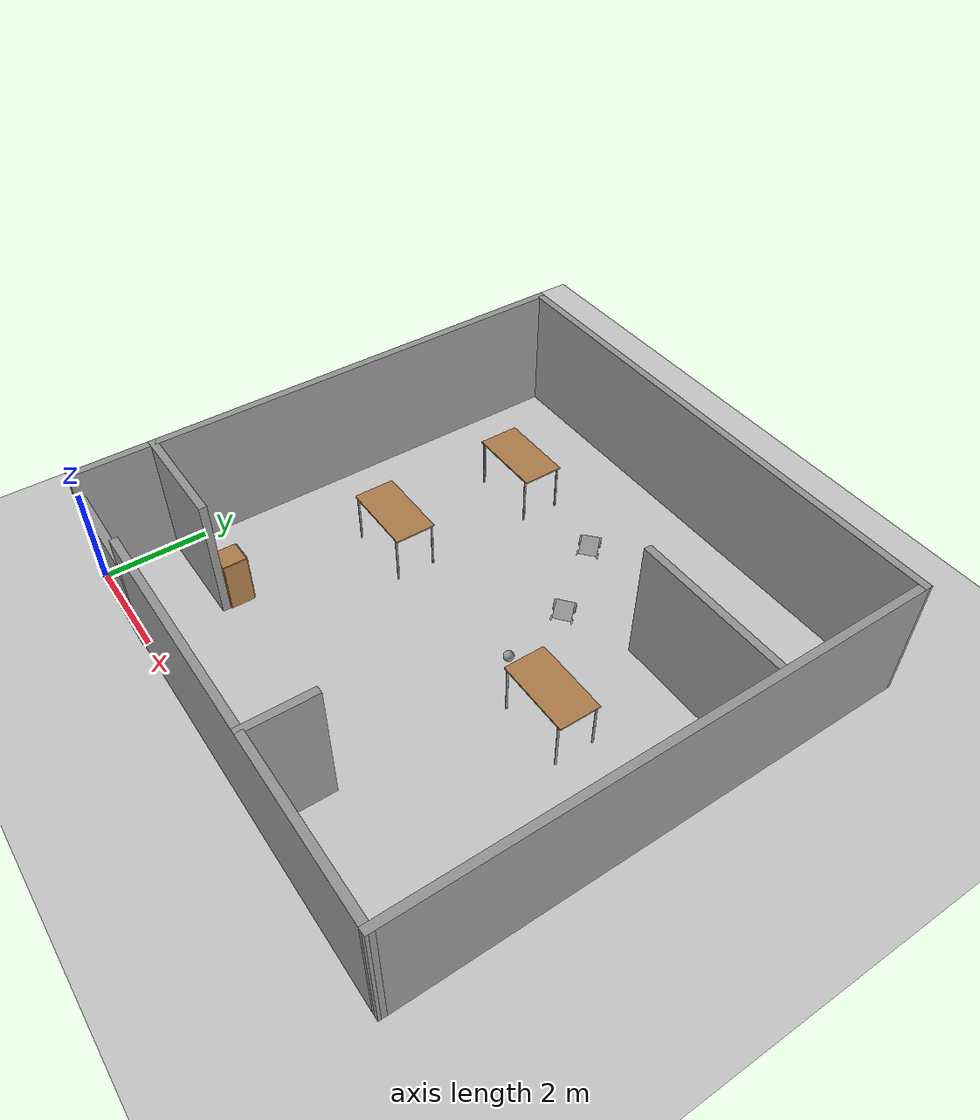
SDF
<sdf version="1.6">
 <world name="default">
  <plugin name="hello" filename="libhello.so"/>
  <light name="sun" type="directional">
   <pose>0 0 10 0 -0 0</pose>
   <diffuse>0.8 0.8 0.8 1</diffuse>
   <specular>0.2 0.2 0.2 1</specular>
   <attenuation>
    <range>1000</range>
    <constant>0.9</constant>
    <linear>0.01</linear>
    <quadratic>0.001</quadratic>
   </attenuation>
   <direction>-0.5 0.1 -0.9</direction>
  </light>
  <model name="ground_plane">
   <static>1</static>
   <link name="link">
    <collision name="collision">
     <geometry><plane><normal>0 0 1</normal><size>100 100</size></plane></geometry>
     <surface>
      <contact><collide_bitmask>65535</collide_bitmask></contact>
      <friction><ode><mu>100</mu><mu2>50</mu2></ode></friction>
     </surface>
    </collision>
    <visual name="visual">
     <cast_shadows>0</cast_shadows>
     <geometry><plane><normal>0 0 1</normal><size>100 100</size></plane></geometry>
     <material>
      <script><uri>file://media/materials/scripts/gazebo.material</uri><name>Gazebo/Grey</name></script>
     </material>
    </visual>
   </link>
  </model>
  <gravity>0 0 -9.8</gravity>
  <magnetic_field>6e-06 2.3e-05 -4.2e-05</magnetic_field>
  <atmosphere type="adiabatic"/>
  <physics name="default_physics" default="0" type="ode">
   <max_step_size>0.001</max_step_size>
   <real_time_factor>1</real_time_factor>
   <real_time_update_rate>1000</real_time_update_rate>
  </physics>
  <scene><ambient>0.4 0.4 0.4 1</ambient><background>0.7 0.7 0.7 1</background><shadows>1</shadows></scene>
  <spherical_coordinates>
   <surface_model>EARTH_WGS84</surface_model>
   <latitude_deg>0</latitude_deg>
   <longitude_deg>0</longitude_deg>
   <elevation>0</elevation>
   <heading_deg>0</heading_deg>
  </spherical_coordinates>
  <model name="building_final">
   <pose>5.00504 5 0 0 -0 0</pose>
   <link name="Door_0">
    <collision name="Door_0_Collision">
     <geometry><box><size>2 0.17 2</size></box></geometry>
     <pose>0 0 1 0 -0 0</pose>
    </collision>
    <visual name="Door_0_Visual">
     <pose>0 0 1 0 -0 0</pose>
     <geometry><box><size>2 0.17 2</size></box></geometry>
     <material>
      <script><uri>file://media/materials/scripts/gazebo.material</uri><name>Gazebo/Grey</name></script>
     </material>
    </visual>
    <pose>-4.00504 -5 0 0 -0 3.12819</pose>
   </link>
   <link name="Wall_0">
    <collision name="Wall_0_Collision">
     <geometry><box><size>10.15 0.15 2.5</size></box></geometry>
     <pose>0 0 1.25 0 -0 0</pose>
    </collision>
    <visual name="Wall_0_Visual">
     <pose>0 0 1.25 0 -0 0</pose>
     <geometry><box><size>10.15 0.15 2.5</size></box></geometry>
     <material>
      <script><uri>file://media/materials/scripts/gazebo.material</uri><name>Gazebo/Grey</name></script>
      <ambient>1 1 1 1</ambient>
     </material>
     <meta><layer>0</layer></meta>
    </visual>
    <pose>-5.00504 0 0 0 -0 1.5708</pose>
   </link>
   <link name="Wall_1">
    <collision name="Wall_1_Collision">
     <geometry><box><size>10.15 0.15 2.5</size></box></geometry>
     <pose>0 0 1.25 0 -0 0</pose>
    </collision>
    <visual name="Wall_1_Visual">
     <pose>0 0 1.25 0 -0 0</pose>
     <geometry><box><size>10.15 0.15 2.5</size></box></geometry>
     <material>
      <script><uri>file://media/materials/scripts/gazebo.material</uri><name>Gazebo/Grey</name></script>
      <ambient>1 1 1 1</ambient>
     </material>
     <meta><layer>0</layer></meta>
    </visual>
    <pose>-0.005037 5 0 0 -0 0</pose>
   </link>
   <link name="Wall_2">
    <collision name="Wall_2_Collision">
     <geometry><box><size>10.15 0.15 2.5</size></box></geometry>
     <pose>0 0 1.25 0 -0 0</pose>
    </collision>
    <visual name="Wall_2_Visual">
     <pose>0 0 1.25 0 -0 0</pose>
     <geometry><box><size>10.15 0.15 2.5</size></box></geometry>
     <material>
      <script><uri>file://media/materials/scripts/gazebo.material</uri><name>Gazebo/Grey</name></script>
      <ambient>1 1 1 1</ambient>
     </material>
     <meta><layer>0</layer></meta>
    </visual>
    <pose>4.99996 0 0 0 0 -1.5698</pose>
   </link>
   <link name="Wall_3">
    <collision name="Wall_3_Collision">
     <geometry><box><size>8.16 0.15 2.5</size></box></geometry>
     <pose>0 0 1.25 0 -0 0</pose>
    </collision>
    <visual name="Wall_3_Visual">
     <pose>0 0 1.25 0 -0 0</pose>
     <geometry><box><size>8.16 0.15 2.5</size></box></geometry>
     <material>
      <script><uri>file://media/materials/scripts/gazebo.material</uri><name>Gazebo/Grey</name></script>
      <ambient>1 1 1 1</ambient>
     </material>
     <meta><layer>0</layer></meta>
    </visual>
    <pose>0.999963 -5 0 0 -0 3.14159</pose>
   </link>
   <static>1</static>
  </model>
  <model name="table">
   <static>1</static>
   <link name="link">
    <collision name="surface">
     <pose>0 0 1 0 -0 0</pose>
     <geometry><box><size>1.5 0.8 0.03</size></box></geometry>
     <surface><friction><ode><mu>0.6</mu><mu2>0.6</mu2></ode></friction></surface>
    </collision>
    <visual name="visual1">
     <pose>0 0 1 0 -0 0</pose>
     <geometry><box><size>1.5 0.8 0.03</size></box></geometry>
     <material>
      <script><uri>file://media/materials/scripts/gazebo.material</uri><name>Gazebo/Wood</name></script>
     </material>
    </visual>
    <collision name="front_left_leg">
     <pose>0.68 0.38 0.5 0 -0 0</pose>
     <geometry><cylinder><radius>0.02</radius><length>1</length></cylinder></geometry>
    </collision>
    <visual name="front_left_leg">
     <pose>0.68 0.38 0.5 0 -0 0</pose>
     <geometry><cylinder><radius>0.02</radius><length>1</length></cylinder></geometry>
     <material>
      <script><uri>file://media/materials/scripts/gazebo.material</uri><name>Gazebo/Grey</name></script>
     </material>
    </visual>
    <collision name="front_right_leg">
     <pose>0.68 -0.38 0.5 0 -0 0</pose>
     <geometry><cylinder><radius>0.02</radius><length>1</length></cylinder></geometry>
    </collision>
    <visual name="front_right_leg">
     <pose>0.68 -0.38 0.5 0 -0 0</pose>
     <geometry><cylinder><radius>0.02</radius><length>1</length></cylinder></geometry>
     <material>
      <script><uri>file://media/materials/scripts/gazebo.material</uri><name>Gazebo/Grey</name></script>
     </material>
    </visual>
    <collision name="back_right_leg">
     <pose>-0.68 -0.38 0.5 0 -0 0</pose>
     <geometry><cylinder><radius>0.02</radius><length>1</length></cylinder></geometry>
    </collision>
    <visual name="back_right_leg">
     <pose>-0.68 -0.38 0.5 0 -0 0</pose>
     <geometry><cylinder><radius>0.02</radius><length>1</length></cylinder></geometry>
     <material>
      <script><uri>file://media/materials/scripts/gazebo.material</uri><name>Gazebo/Grey</name></script>
     </material>
    </visual>
    <collision name="back_left_leg">
     <pose>-0.68 0.38 0.5 0 -0 0</pose>
     <geometry><cylinder><radius>0.02</radius><length>1</length></cylinder></geometry>
    </collision>
    <visual name="back_left_leg">
     <pose>-0.68 0.38 0.5 0 -0 0</pose>
     <geometry><cylinder><radius>0.02</radius><length>1</length></cylinder></geometry>
     <material>
      <script><uri>file://media/materials/scripts/gazebo.material</uri><name>Gazebo/Grey</name></script>
     </material>
    </visual>
   </link>
   <pose>7.4346 4.78943 0 0 -0 0</pose>
  </model>
  <model name="table_clone">
   <static>1</static>
   <link name="link">
    <collision name="surface">
     <pose>0 0 1 0 -0 0</pose>
     <geometry><box><size>1.5 0.8 0.03</size></box></geometry>
     <surface><friction><ode><mu>0.6</mu><mu2>0.6</mu2></ode></friction></surface>
    </collision>
    <visual name="visual1">
     <pose>0 0 1 0 -0 0</pose>
     <geometry><box><size>1.5 0.8 0.03</size></box></geometry>
     <material>
      <script><uri>file://media/materials/scripts/gazebo.material</uri><name>Gazebo/Wood</name></script>
     </material>
    </visual>
    <collision name="front_left_leg">
     <pose>0.68 0.38 0.5 0 -0 0</pose>
     <geometry><cylinder><radius>0.02</radius><length>1</length></cylinder></geometry>
    </collision>
    <visual name="front_left_leg">
     <pose>0.68 0.38 0.5 0 -0 0</pose>
     <geometry><cylinder><radius>0.02</radius><length>1</length></cylinder></geometry>
     <material>
      <script><uri>file://media/materials/scripts/gazebo.material</uri><name>Gazebo/Grey</name></script>
     </material>
    </visual>
    <collision name="front_right_leg">
     <pose>0.68 -0.38 0.5 0 -0 0</pose>
     <geometry><cylinder><radius>0.02</radius><length>1</length></cylinder></geometry>
    </collision>
    <visual name="front_right_leg">
     <pose>0.68 -0.38 0.5 0 -0 0</pose>
     <geometry><cylinder><radius>0.02</radius><length>1</length></cylinder></geometry>
     <material>
      <script><uri>file://media/materials/scripts/gazebo.material</uri><name>Gazebo/Grey</name></script>
     </material>
    </visual>
    <collision name="back_right_leg">
     <pose>-0.68 -0.38 0.5 0 -0 0</pose>
     <geometry><cylinder><radius>0.02</radius><length>1</length></cylinder></geometry>
    </collision>
    <visual name="back_right_leg">
     <pose>-0.68 -0.38 0.5 0 -0 0</pose>
     <geometry><cylinder><radius>0.02</radius><length>1</length></cylinder></geometry>
     <material>
      <script><uri>file://media/materials/scripts/gazebo.material</uri><name>Gazebo/Grey</name></script>
     </material>
    </visual>
    <collision name="back_left_leg">
     <pose>-0.68 0.38 0.5 0 -0 0</pose>
     <geometry><cylinder><radius>0.02</radius><length>1</length></cylinder></geometry>
    </collision>
    <visual name="back_left_leg">
     <pose>-0.68 0.38 0.5 0 -0 0</pose>
     <geometry><cylinder><radius>0.02</radius><length>1</length></cylinder></geometry>
     <material>
      <script><uri>file://media/materials/scripts/gazebo.material</uri><name>Gazebo/Grey</name></script>
     </material>
    </visual>
   </link>
   <pose>2.48389 4.8698 0 0 -0 0</pose>
  </model>
  <model name="table_clone_1">
   <static>1</static>
   <link name="link">
    <collision name="surface">
     <pose>0 0 1 0 -0 0</pose>
     <geometry><box><size>1.5 0.8 0.03</size></box></geometry>
     <surface><friction><ode><mu>0.6</mu><mu2>0.6</mu2></ode></friction></surface>
    </collision>
    <visual name="visual1">
     <pose>0 0 1 0 -0 0</pose>
     <geometry><box><size>1.5 0.8 0.03</size></box></geometry>
     <material>
      <script><uri>file://media/materials/scripts/gazebo.material</uri><name>Gazebo/Wood</name></script>
     </material>
    </visual>
    <collision name="front_left_leg">
     <pose>0.68 0.38 0.5 0 -0 0</pose>
     <geometry><cylinder><radius>0.02</radius><length>1</length></cylinder></geometry>
    </collision>
    <visual name="front_left_leg">
     <pose>0.68 0.38 0.5 0 -0 0</pose>
     <geometry><cylinder><radius>0.02</radius><length>1</length></cylinder></geometry>
     <material>
      <script><uri>file://media/materials/scripts/gazebo.material</uri><name>Gazebo/Grey</name></script>
     </material>
    </visual>
    <collision name="front_right_leg">
     <pose>0.68 -0.38 0.5 0 -0 0</pose>
     <geometry><cylinder><radius>0.02</radius><length>1</length></cylinder></geometry>
    </collision>
    <visual name="front_right_leg">
     <pose>0.68 -0.38 0.5 0 -0 0</pose>
     <geometry><cylinder><radius>0.02</radius><length>1</length></cylinder></geometry>
     <material>
      <script><uri>file://media/materials/scripts/gazebo.material</uri><name>Gazebo/Grey</name></script>
     </material>
    </visual>
    <collision name="back_right_leg">
     <pose>-0.68 -0.38 0.5 0 -0 0</pose>
     <geometry><cylinder><radius>0.02</radius><length>1</length></cylinder></geometry>
    </collision>
    <visual name="back_right_leg">
     <pose>-0.68 -0.38 0.5 0 -0 0</pose>
     <geometry><cylinder><radius>0.02</radius><length>1</length></cylinder></geometry>
     <material>
      <script><uri>file://media/materials/scripts/gazebo.material</uri><name>Gazebo/Grey</name></script>
     </material>
    </visual>
    <collision name="back_left_leg">
     <pose>-0.68 0.38 0.5 0 -0 0</pose>
     <geometry><cylinder><radius>0.02</radius><length>1</length></cylinder></geometry>
    </collision>
    <visual name="back_left_leg">
     <pose>-0.68 0.38 0.5 0 -0 0</pose>
     <geometry><cylinder><radius>0.02</radius><length>1</length></cylinder></geometry>
     <material>
      <script><uri>file://media/materials/scripts/gazebo.material</uri><name>Gazebo/Grey</name></script>
     </material>
    </visual>
   </link>
   <pose>2.49519 7.74494 0 0 -0 0</pose>
  </model>
  <model name="robotrevision">
   <link name="link_0">
    <pose>-0.15 -0.190014 -0.02401 1.5707 -0 0</pose>
    <inertial>
     <mass>1</mass>
     <inertia><ixx>0.145833</ixx><ixy>0</ixy><ixz>0</ixz><iyy>0.145833</iyy><iyz>0</iyz><izz>0.125</izz></inertia>
    </inertial>
    <visual name="visual">
     <geometry><cylinder><radius>0.1</radius><length>0.03</length></cylinder></geometry>
     <material>
      <lighting>1</lighting>
      <script><uri>file://media/materials/scripts/gazebo.material</uri><name>Gazebo/Grey</name></script>
      <shader type="pixel"><normal_map>__default__</normal_map></shader>
      <ambient>0.3 0.3 0.3 1</ambient>
      <diffuse>0.7 0.7 0.7 1</diffuse>
      <specular>0.01 0.01 0.01 1</specular>
      <emissive>0 0 0 1</emissive>
     </material>
    </visual>
    <collision name="collision">
     <geometry><cylinder><radius>0.1</radius><length>0.03</length></cylinder></geometry>
     <surface>
      <friction>
       <ode><mu>1</mu><mu2>1</mu2><fdir1>0 0 0</fdir1><slip1>0</slip1><slip2>0</slip2></ode>
       <torsional>
        <coefficient>1</coefficient>
        <patch_radius>0</patch_radius>
        <surface_radius>0</surface_radius>
        <use_patch_radius>1</use_patch_radius>
        <ode><slip>0</slip></ode>
       </torsional>
      </friction>
      <bounce><restitution_coefficient>0</restitution_coefficient><threshold>1e+06</threshold></bounce>
      <contact>
       <collide_without_contact>0</collide_without_contact>
       <collide_without_contact_bitmask>1</collide_without_contact_bitmask>
       <collide_bitmask>1</collide_bitmask>
       <ode>
        <soft_cfm>0</soft_cfm>
        <soft_erp>0.2</soft_erp>
        <kp>1e+13</kp>
        <kd>1</kd>
        <max_vel>0.01</max_vel>
        <min_depth>0</min_depth>
       </ode>
       <bullet>
        <split_impulse>1</split_impulse>
        <split_impulse_penetration_threshold>-0.01</split_impulse_penetration_threshold>
        <soft_cfm>0</soft_cfm>
        <soft_erp>0.2</soft_erp>
        <kp>1e+13</kp>
        <kd>1</kd>
       </bullet>
      </contact>
     </surface>
    </collision>
   </link>
   <link name="link_0_clone">
    <pose>0.15 -0.19001 0.016002 1.5707 -0 0</pose>
    <inertial>
     <mass>1</mass>
     <inertia><ixx>0.145833</ixx><ixy>0</ixy><ixz>0</ixz><iyy>0.145833</iyy><iyz>0</iyz><izz>0.125</izz></inertia>
    </inertial>
    <visual name="visual">
     <geometry><cylinder><radius>0.1</radius><length>0.03</length></cylinder></geometry>
     <material>
      <lighting>1</lighting>
      <script><uri>file://media/materials/scripts/gazebo.material</uri><name>Gazebo/Grey</name></script>
      <shader type="pixel"><normal_map>__default__</normal_map></shader>
      <ambient>0.3 0.3 0.3 1</ambient>
      <diffuse>0.7 0.7 0.7 1</diffuse>
      <specular>0.01 0.01 0.01 1</specular>
      <emissive>0 0 0 1</emissive>
     </material>
    </visual>
    <collision name="collision">
     <geometry><cylinder><radius>0.1</radius><length>0.03</length></cylinder></geometry>
     <surface>
      <friction>
       <ode><mu>1</mu><mu2>1</mu2><fdir1>0 0 0</fdir1><slip1>0</slip1><slip2>0</slip2></ode>
       <torsional>
        <coefficient>1</coefficient>
        <patch_radius>0</patch_radius>
        <surface_radius>0</surface_radius>
        <use_patch_radius>1</use_patch_radius>
        <ode><slip>0</slip></ode>
       </torsional>
      </friction>
      <bounce><restitution_coefficient>0</restitution_coefficient><threshold>1e+06</threshold></bounce>
      <contact>
       <collide_without_contact>0</collide_without_contact>
       <collide_without_contact_bitmask>1</collide_without_contact_bitmask>
       <collide_bitmask>1</collide_bitmask>
       <ode>
        <soft_cfm>0</soft_cfm>
        <soft_erp>0.2</soft_erp>
        <kp>1e+13</kp>
        <kd>1</kd>
        <max_vel>0.01</max_vel>
        <min_depth>0</min_depth>
       </ode>
       <bullet>
        <split_impulse>1</split_impulse>
        <split_impulse_penetration_threshold>-0.01</split_impulse_penetration_threshold>
        <soft_cfm>0</soft_cfm>
        <soft_erp>0.2</soft_erp>
        <kp>1e+13</kp>
        <kd>1</kd>
       </bullet>
      </contact>
     </surface>
    </collision>
   </link>
   <link name="link_0_clone_0">
    <pose>0.15 0.19001 0.016002 1.5707 -0 0</pose>
    <inertial>
     <mass>1</mass>
     <inertia><ixx>0.145833</ixx><ixy>0</ixy><ixz>0</ixz><iyy>0.145833</iyy><iyz>0</iyz><izz>0.125</izz></inertia>
    </inertial>
    <visual name="visual">
     <geometry><cylinder><radius>0.1</radius><length>0.03</length></cylinder></geometry>
     <material>
      <lighting>1</lighting>
      <script><uri>file://media/materials/scripts/gazebo.material</uri><name>Gazebo/Grey</name></script>
      <shader type="pixel"><normal_map>__default__</normal_map></shader>
      <ambient>0.3 0.3 0.3 1</ambient>
      <diffuse>0.7 0.7 0.7 1</diffuse>
      <specular>0.01 0.01 0.01 1</specular>
      <emissive>0 0 0 1</emissive>
     </material>
    </visual>
    <collision name="collision">
     <geometry><cylinder><radius>0.1</radius><length>0.03</length></cylinder></geometry>
     <surface>
      <friction>
       <ode><mu>1</mu><mu2>1</mu2><fdir1>0 0 0</fdir1><slip1>0</slip1><slip2>0</slip2></ode>
       <torsional>
        <coefficient>1</coefficient>
        <patch_radius>0</patch_radius>
        <surface_radius>0</surface_radius>
        <use_patch_radius>1</use_patch_radius>
        <ode><slip>0</slip></ode>
       </torsional>
      </friction>
      <bounce><restitution_coefficient>0</restitution_coefficient><threshold>1e+06</threshold></bounce>
      <contact>
       <collide_without_contact>0</collide_without_contact>
       <collide_without_contact_bitmask>1</collide_without_contact_bitmask>
       <collide_bitmask>1</collide_bitmask>
       <ode>
        <soft_cfm>0</soft_cfm>
        <soft_erp>0.2</soft_erp>
        <kp>1e+13</kp>
        <kd>1</kd>
        <max_vel>0.01</max_vel>
        <min_depth>0</min_depth>
       </ode>
       <bullet>
        <split_impulse>1</split_impulse>
        <split_impulse_penetration_threshold>-0.01</split_impulse_penetration_threshold>
        <soft_cfm>0</soft_cfm>
        <soft_erp>0.2</soft_erp>
        <kp>1e+13</kp>
        <kd>1</kd>
       </bullet>
      </contact>
     </surface>
    </collision>
   </link>
   <link name="link_0_clone_1">
    <pose>-0.15 0.19001 0.016002 1.5707 -0 0</pose>
    <inertial>
     <mass>1</mass>
     <inertia><ixx>0.145833</ixx><ixy>0</ixy><ixz>0</ixz><iyy>0.145833</iyy><iyz>0</iyz><izz>0.125</izz></inertia>
    </inertial>
    <visual name="visual">
     <geometry><cylinder><radius>0.1</radius><length>0.03</length></cylinder></geometry>
     <material>
      <lighting>1</lighting>
      <script><uri>file://media/materials/scripts/gazebo.material</uri><name>Gazebo/Grey</name></script>
      <shader type="pixel"><normal_map>__default__</normal_map></shader>
      <ambient>0.3 0.3 0.3 1</ambient>
      <diffuse>0.7 0.7 0.7 1</diffuse>
      <specular>0.01 0.01 0.01 1</specular>
      <emissive>0 0 0 1</emissive>
     </material>
    </visual>
    <collision name="collision">
     <geometry><cylinder><radius>0.1</radius><length>0.03</length></cylinder></geometry>
     <surface>
      <friction>
       <ode><mu>1</mu><mu2>1</mu2><fdir1>0 0 0</fdir1><slip1>0</slip1><slip2>0</slip2></ode>
       <torsional>
        <coefficient>1</coefficient>
        <patch_radius>0</patch_radius>
        <surface_radius>0</surface_radius>
        <use_patch_radius>1</use_patch_radius>
        <ode><slip>0</slip></ode>
       </torsional>
      </friction>
      <bounce><restitution_coefficient>0</restitution_coefficient><threshold>1e+06</threshold></bounce>
      <contact>
       <collide_without_contact>0</collide_without_contact>
       <collide_without_contact_bitmask>1</collide_without_contact_bitmask>
       <collide_bitmask>1</collide_bitmask>
       <ode>
        <soft_cfm>0</soft_cfm>
        <soft_erp>0.2</soft_erp>
        <kp>1e+13</kp>
        <kd>1</kd>
        <max_vel>0.01</max_vel>
        <min_depth>0</min_depth>
       </ode>
       <bullet>
        <split_impulse>1</split_impulse>
        <split_impulse_penetration_threshold>-0.01</split_impulse_penetration_threshold>
        <soft_cfm>0</soft_cfm>
        <soft_erp>0.2</soft_erp>
        <kp>1e+13</kp>
        <kd>1</kd>
       </bullet>
      </contact>
     </surface>
    </collision>
   </link>
   <link name="link_1">
    <pose>0 -0 -0.023997 0 -0 0</pose>
    <inertial>
     <mass>1</mass>
     <inertia>
      <ixx>0.166667</ixx>
      <ixy>0</ixy>
      <ixz>0</ixz>
      <iyy>0.166667</iyy>
      <iyz>0</iyz>
      <izz>0.166667</izz>
     </inertia>
    </inertial>
    <visual name="visual">
     <geometry><box><size>0.5 0.35 0.05</size></box></geometry>
     <material>
      <lighting>1</lighting>
      <script><uri>file://media/materials/scripts/gazebo.material</uri><name>Gazebo/Grey</name></script>
      <shader type="pixel"><normal_map>__default__</normal_map></shader>
      <ambient>0.3 0.3 0.3 1</ambient>
      <diffuse>0.7 0.7 0.7 1</diffuse>
      <specular>0.01 0.01 0.01 1</specular>
      <emissive>0 0 0 1</emissive>
     </material>
    </visual>
    <collision name="collision">
     <geometry><box><size>0.5 0.35 0.05</size></box></geometry>
     <surface>
      <friction>
       <ode><mu>1</mu><mu2>1</mu2><fdir1>0 0 0</fdir1><slip1>0</slip1><slip2>0</slip2></ode>
       <torsional>
        <coefficient>1</coefficient>
        <patch_radius>0</patch_radius>
        <surface_radius>0</surface_radius>
        <use_patch_radius>1</use_patch_radius>
        <ode><slip>0</slip></ode>
       </torsional>
      </friction>
      <bounce><restitution_coefficient>0</restitution_coefficient><threshold>1e+06</threshold></bounce>
      <contact>
       <collide_without_contact>0</collide_without_contact>
       <collide_without_contact_bitmask>1</collide_without_contact_bitmask>
       <collide_bitmask>1</collide_bitmask>
       <ode>
        <soft_cfm>0</soft_cfm>
        <soft_erp>0.2</soft_erp>
        <kp>1e+13</kp>
        <kd>1</kd>
        <max_vel>0.01</max_vel>
        <min_depth>0</min_depth>
       </ode>
       <bullet>
        <split_impulse>1</split_impulse>
        <split_impulse_penetration_threshold>-0.01</split_impulse_penetration_threshold>
        <soft_cfm>0</soft_cfm>
        <soft_erp>0.2</soft_erp>
        <kp>1e+13</kp>
        <kd>1</kd>
       </bullet>
      </contact>
     </surface>
    </collision>
   </link>
   <joint name="link_1_JOINT_4" type="revolute">
    <parent>link_1</parent>
    <child>link_0_clone_0</child>
    <axis>
     <xyz>0 0 1</xyz>
     <use_parent_model_frame>0</use_parent_model_frame>
     <limit>
      <lower>-1.79769e+308</lower>
      <upper>1.79769e+308</upper>
      <effort>-1</effort>
      <velocity>-1</velocity>
     </limit>
     <dynamics>
      <spring_reference>0</spring_reference>
      <spring_stiffness>0</spring_stiffness>
      <damping>0</damping>
     </dynamics>
    </axis>
    <physics>
     <ode><limit><cfm>0</cfm><erp>0.2</erp></limit><suspension><cfm>0</cfm><erp>0.2</erp></suspension></ode>
    </physics>
   </joint>
   <joint name="link_1_JOINT_5" type="revolute">
    <parent>link_1</parent>
    <child>link_0</child>
    <axis>
     <xyz>0 0 1</xyz>
     <use_parent_model_frame>0</use_parent_model_frame>
     <limit>
      <lower>-1.79769e+308</lower>
      <upper>1.79769e+308</upper>
      <effort>-1</effort>
      <velocity>-1</velocity>
     </limit>
     <dynamics>
      <spring_reference>0</spring_reference>
      <spring_stiffness>0</spring_stiffness>
      <damping>0</damping>
     </dynamics>
    </axis>
    <physics>
     <ode><limit><cfm>0</cfm><erp>0.2</erp></limit><suspension><cfm>0</cfm><erp>0.2</erp></suspension></ode>
    </physics>
   </joint>
   <joint name="link_1_JOINT_6" type="revolute">
    <parent>link_1</parent>
    <child>link_0_clone</child>
    <axis>
     <xyz>0 0 1</xyz>
     <use_parent_model_frame>0</use_parent_model_frame>
     <limit>
      <lower>-1.79769e+308</lower>
      <upper>1.79769e+308</upper>
      <effort>-1</effort>
      <velocity>-1</velocity>
     </limit>
     <dynamics>
      <spring_reference>0</spring_reference>
      <spring_stiffness>0</spring_stiffness>
      <damping>0</damping>
     </dynamics>
    </axis>
    <physics>
     <ode><limit><cfm>0</cfm><erp>0.2</erp></limit><suspension><cfm>0</cfm><erp>0.2</erp></suspension></ode>
    </physics>
   </joint>
   <joint name="link_1_JOINT_7" type="revolute">
    <parent>link_1</parent>
    <child>link_0_clone_1</child>
    <axis>
     <xyz>0 0 1</xyz>
     <use_parent_model_frame>0</use_parent_model_frame>
     <limit>
      <lower>-1.79769e+308</lower>
      <upper>1.79769e+308</upper>
      <effort>-1</effort>
      <velocity>-1</velocity>
     </limit>
     <dynamics>
      <spring_reference>0</spring_reference>
      <spring_stiffness>0</spring_stiffness>
      <damping>0</damping>
     </dynamics>
    </axis>
    <physics>
     <ode><limit><cfm>0</cfm><erp>0.2</erp></limit><suspension><cfm>0</cfm><erp>0.2</erp></suspension></ode>
    </physics>
   </joint>
   <static>0</static>
   <pose>5.6112 6.48088 0.002225 -3.14136 0.540202 -0.881859</pose>
  </model>
  <model name="robotrevision_0">
   <link name="link_0">
    <pose>-0.15 -0.190014 -0.02401 1.5707 -0 0</pose>
    <inertial>
     <mass>1</mass>
     <inertia><ixx>0.145833</ixx><ixy>0</ixy><ixz>0</ixz><iyy>0.145833</iyy><iyz>0</iyz><izz>0.125</izz></inertia>
    </inertial>
    <visual name="visual">
     <geometry><cylinder><radius>0.1</radius><length>0.03</length></cylinder></geometry>
     <material>
      <lighting>1</lighting>
      <script><uri>file://media/materials/scripts/gazebo.material</uri><name>Gazebo/Grey</name></script>
      <shader type="pixel"><normal_map>__default__</normal_map></shader>
      <ambient>0.3 0.3 0.3 1</ambient>
      <diffuse>0.7 0.7 0.7 1</diffuse>
      <specular>0.01 0.01 0.01 1</specular>
      <emissive>0 0 0 1</emissive>
     </material>
    </visual>
    <collision name="collision">
     <geometry><cylinder><radius>0.1</radius><length>0.03</length></cylinder></geometry>
     <surface>
      <friction>
       <ode><mu>1</mu><mu2>1</mu2><fdir1>0 0 0</fdir1><slip1>0</slip1><slip2>0</slip2></ode>
       <torsional>
        <coefficient>1</coefficient>
        <patch_radius>0</patch_radius>
        <surface_radius>0</surface_radius>
        <use_patch_radius>1</use_patch_radius>
        <ode><slip>0</slip></ode>
       </torsional>
      </friction>
      <bounce><restitution_coefficient>0</restitution_coefficient><threshold>1e+06</threshold></bounce>
      <contact>
       <collide_without_contact>0</collide_without_contact>
       <collide_without_contact_bitmask>1</collide_without_contact_bitmask>
       <collide_bitmask>1</collide_bitmask>
       <ode>
        <soft_cfm>0</soft_cfm>
        <soft_erp>0.2</soft_erp>
        <kp>1e+13</kp>
        <kd>1</kd>
        <max_vel>0.01</max_vel>
        <min_depth>0</min_depth>
       </ode>
       <bullet>
        <split_impulse>1</split_impulse>
        <split_impulse_penetration_threshold>-0.01</split_impulse_penetration_threshold>
        <soft_cfm>0</soft_cfm>
        <soft_erp>0.2</soft_erp>
        <kp>1e+13</kp>
        <kd>1</kd>
       </bullet>
      </contact>
     </surface>
    </collision>
   </link>
   <link name="link_0_clone">
    <pose>0.15 -0.19001 0.016002 1.5707 -0 0</pose>
    <inertial>
     <mass>1</mass>
     <inertia><ixx>0.145833</ixx><ixy>0</ixy><ixz>0</ixz><iyy>0.145833</iyy><iyz>0</iyz><izz>0.125</izz></inertia>
    </inertial>
    <visual name="visual">
     <geometry><cylinder><radius>0.1</radius><length>0.03</length></cylinder></geometry>
     <material>
      <lighting>1</lighting>
      <script><uri>file://media/materials/scripts/gazebo.material</uri><name>Gazebo/Grey</name></script>
      <shader type="pixel"><normal_map>__default__</normal_map></shader>
      <ambient>0.3 0.3 0.3 1</ambient>
      <diffuse>0.7 0.7 0.7 1</diffuse>
      <specular>0.01 0.01 0.01 1</specular>
      <emissive>0 0 0 1</emissive>
     </material>
    </visual>
    <collision name="collision">
     <geometry><cylinder><radius>0.1</radius><length>0.03</length></cylinder></geometry>
     <surface>
      <friction>
       <ode><mu>1</mu><mu2>1</mu2><fdir1>0 0 0</fdir1><slip1>0</slip1><slip2>0</slip2></ode>
       <torsional>
        <coefficient>1</coefficient>
        <patch_radius>0</patch_radius>
        <surface_radius>0</surface_radius>
        <use_patch_radius>1</use_patch_radius>
        <ode><slip>0</slip></ode>
       </torsional>
      </friction>
      <bounce><restitution_coefficient>0</restitution_coefficient><threshold>1e+06</threshold></bounce>
      <contact>
       <collide_without_contact>0</collide_without_contact>
       <collide_without_contact_bitmask>1</collide_without_contact_bitmask>
       <collide_bitmask>1</collide_bitmask>
       <ode>
        <soft_cfm>0</soft_cfm>
        <soft_erp>0.2</soft_erp>
        <kp>1e+13</kp>
        <kd>1</kd>
        <max_vel>0.01</max_vel>
        <min_depth>0</min_depth>
       </ode>
       <bullet>
        <split_impulse>1</split_impulse>
        <split_impulse_penetration_threshold>-0.01</split_impulse_penetration_threshold>
        <soft_cfm>0</soft_cfm>
        <soft_erp>0.2</soft_erp>
        <kp>1e+13</kp>
        <kd>1</kd>
       </bullet>
      </contact>
     </surface>
    </collision>
   </link>
   <link name="link_0_clone_0">
    <pose>0.15 0.19001 0.016002 1.5707 -0 0</pose>
    <inertial>
     <mass>1</mass>
     <inertia><ixx>0.145833</ixx><ixy>0</ixy><ixz>0</ixz><iyy>0.145833</iyy><iyz>0</iyz><izz>0.125</izz></inertia>
    </inertial>
    <visual name="visual">
     <geometry><cylinder><radius>0.1</radius><length>0.03</length></cylinder></geometry>
     <material>
      <lighting>1</lighting>
      <script><uri>file://media/materials/scripts/gazebo.material</uri><name>Gazebo/Grey</name></script>
      <shader type="pixel"><normal_map>__default__</normal_map></shader>
      <ambient>0.3 0.3 0.3 1</ambient>
      <diffuse>0.7 0.7 0.7 1</diffuse>
      <specular>0.01 0.01 0.01 1</specular>
      <emissive>0 0 0 1</emissive>
     </material>
    </visual>
    <collision name="collision">
     <geometry><cylinder><radius>0.1</radius><length>0.03</length></cylinder></geometry>
     <surface>
      <friction>
       <ode><mu>1</mu><mu2>1</mu2><fdir1>0 0 0</fdir1><slip1>0</slip1><slip2>0</slip2></ode>
       <torsional>
        <coefficient>1</coefficient>
        <patch_radius>0</patch_radius>
        <surface_radius>0</surface_radius>
        <use_patch_radius>1</use_patch_radius>
        <ode><slip>0</slip></ode>
       </torsional>
      </friction>
      <bounce><restitution_coefficient>0</restitution_coefficient><threshold>1e+06</threshold></bounce>
      <contact>
       <collide_without_contact>0</collide_without_contact>
       <collide_without_contact_bitmask>1</collide_without_contact_bitmask>
       <collide_bitmask>1</collide_bitmask>
       <ode>
        <soft_cfm>0</soft_cfm>
        <soft_erp>0.2</soft_erp>
        <kp>1e+13</kp>
        <kd>1</kd>
        <max_vel>0.01</max_vel>
        <min_depth>0</min_depth>
       </ode>
       <bullet>
        <split_impulse>1</split_impulse>
        <split_impulse_penetration_threshold>-0.01</split_impulse_penetration_threshold>
        <soft_cfm>0</soft_cfm>
        <soft_erp>0.2</soft_erp>
        <kp>1e+13</kp>
        <kd>1</kd>
       </bullet>
      </contact>
     </surface>
    </collision>
   </link>
   <link name="link_0_clone_1">
    <pose>-0.15 0.19001 0.016002 1.5707 -0 0</pose>
    <inertial>
     <mass>1</mass>
     <inertia><ixx>0.145833</ixx><ixy>0</ixy><ixz>0</ixz><iyy>0.145833</iyy><iyz>0</iyz><izz>0.125</izz></inertia>
    </inertial>
    <visual name="visual">
     <geometry><cylinder><radius>0.1</radius><length>0.03</length></cylinder></geometry>
     <material>
      <lighting>1</lighting>
      <script><uri>file://media/materials/scripts/gazebo.material</uri><name>Gazebo/Grey</name></script>
      <shader type="pixel"><normal_map>__default__</normal_map></shader>
      <ambient>0.3 0.3 0.3 1</ambient>
      <diffuse>0.7 0.7 0.7 1</diffuse>
      <specular>0.01 0.01 0.01 1</specular>
      <emissive>0 0 0 1</emissive>
     </material>
    </visual>
    <collision name="collision">
     <geometry><cylinder><radius>0.1</radius><length>0.03</length></cylinder></geometry>
     <surface>
      <friction>
       <ode><mu>1</mu><mu2>1</mu2><fdir1>0 0 0</fdir1><slip1>0</slip1><slip2>0</slip2></ode>
       <torsional>
        <coefficient>1</coefficient>
        <patch_radius>0</patch_radius>
        <surface_radius>0</surface_radius>
        <use_patch_radius>1</use_patch_radius>
        <ode><slip>0</slip></ode>
       </torsional>
      </friction>
      <bounce><restitution_coefficient>0</restitution_coefficient><threshold>1e+06</threshold></bounce>
      <contact>
       <collide_without_contact>0</collide_without_contact>
       <collide_without_contact_bitmask>1</collide_without_contact_bitmask>
       <collide_bitmask>1</collide_bitmask>
       <ode>
        <soft_cfm>0</soft_cfm>
        <soft_erp>0.2</soft_erp>
        <kp>1e+13</kp>
        <kd>1</kd>
        <max_vel>0.01</max_vel>
        <min_depth>0</min_depth>
       </ode>
       <bullet>
        <split_impulse>1</split_impulse>
        <split_impulse_penetration_threshold>-0.01</split_impulse_penetration_threshold>
        <soft_cfm>0</soft_cfm>
        <soft_erp>0.2</soft_erp>
        <kp>1e+13</kp>
        <kd>1</kd>
       </bullet>
      </contact>
     </surface>
    </collision>
   </link>
   <link name="link_1">
    <pose>0 -0 -0.023997 0 -0 0</pose>
    <inertial>
     <mass>1</mass>
     <inertia>
      <ixx>0.166667</ixx>
      <ixy>0</ixy>
      <ixz>0</ixz>
      <iyy>0.166667</iyy>
      <iyz>0</iyz>
      <izz>0.166667</izz>
     </inertia>
    </inertial>
    <visual name="visual">
     <geometry><box><size>0.5 0.35 0.05</size></box></geometry>
     <material>
      <lighting>1</lighting>
      <script><uri>file://media/materials/scripts/gazebo.material</uri><name>Gazebo/Grey</name></script>
      <shader type="pixel"><normal_map>__default__</normal_map></shader>
      <ambient>0.3 0.3 0.3 1</ambient>
      <diffuse>0.7 0.7 0.7 1</diffuse>
      <specular>0.01 0.01 0.01 1</specular>
      <emissive>0 0 0 1</emissive>
     </material>
    </visual>
    <collision name="collision">
     <geometry><box><size>0.5 0.35 0.05</size></box></geometry>
     <surface>
      <friction>
       <ode><mu>1</mu><mu2>1</mu2><fdir1>0 0 0</fdir1><slip1>0</slip1><slip2>0</slip2></ode>
       <torsional>
        <coefficient>1</coefficient>
        <patch_radius>0</patch_radius>
        <surface_radius>0</surface_radius>
        <use_patch_radius>1</use_patch_radius>
        <ode><slip>0</slip></ode>
       </torsional>
      </friction>
      <bounce><restitution_coefficient>0</restitution_coefficient><threshold>1e+06</threshold></bounce>
      <contact>
       <collide_without_contact>0</collide_without_contact>
       <collide_without_contact_bitmask>1</collide_without_contact_bitmask>
       <collide_bitmask>1</collide_bitmask>
       <ode>
        <soft_cfm>0</soft_cfm>
        <soft_erp>0.2</soft_erp>
        <kp>1e+13</kp>
        <kd>1</kd>
        <max_vel>0.01</max_vel>
        <min_depth>0</min_depth>
       </ode>
       <bullet>
        <split_impulse>1</split_impulse>
        <split_impulse_penetration_threshold>-0.01</split_impulse_penetration_threshold>
        <soft_cfm>0</soft_cfm>
        <soft_erp>0.2</soft_erp>
        <kp>1e+13</kp>
        <kd>1</kd>
       </bullet>
      </contact>
     </surface>
    </collision>
   </link>
   <joint name="link_1_JOINT_4" type="revolute">
    <parent>link_1</parent>
    <child>link_0_clone_0</child>
    <axis>
     <xyz>0 0 1</xyz>
     <use_parent_model_frame>0</use_parent_model_frame>
     <limit>
      <lower>-1.79769e+308</lower>
      <upper>1.79769e+308</upper>
      <effort>-1</effort>
      <velocity>-1</velocity>
     </limit>
     <dynamics>
      <spring_reference>0</spring_reference>
      <spring_stiffness>0</spring_stiffness>
      <damping>0</damping>
     </dynamics>
    </axis>
    <physics>
     <ode><limit><cfm>0</cfm><erp>0.2</erp></limit><suspension><cfm>0</cfm><erp>0.2</erp></suspension></ode>
    </physics>
   </joint>
   <joint name="link_1_JOINT_5" type="revolute">
    <parent>link_1</parent>
    <child>link_0</child>
    <axis>
     <xyz>0 0 1</xyz>
     <use_parent_model_frame>0</use_parent_model_frame>
     <limit>
      <lower>-1.79769e+308</lower>
      <upper>1.79769e+308</upper>
      <effort>-1</effort>
      <velocity>-1</velocity>
     </limit>
     <dynamics>
      <spring_reference>0</spring_reference>
      <spring_stiffness>0</spring_stiffness>
      <damping>0</damping>
     </dynamics>
    </axis>
    <physics>
     <ode><limit><cfm>0</cfm><erp>0.2</erp></limit><suspension><cfm>0</cfm><erp>0.2</erp></suspension></ode>
    </physics>
   </joint>
   <joint name="link_1_JOINT_6" type="revolute">
    <parent>link_1</parent>
    <child>link_0_clone</child>
    <axis>
     <xyz>0 0 1</xyz>
     <use_parent_model_frame>0</use_parent_model_frame>
     <limit>
      <lower>-1.79769e+308</lower>
      <upper>1.79769e+308</upper>
      <effort>-1</effort>
      <velocity>-1</velocity>
     </limit>
     <dynamics>
      <spring_reference>0</spring_reference>
      <spring_stiffness>0</spring_stiffness>
      <damping>0</damping>
     </dynamics>
    </axis>
    <physics>
     <ode><limit><cfm>0</cfm><erp>0.2</erp></limit><suspension><cfm>0</cfm><erp>0.2</erp></suspension></ode>
    </physics>
   </joint>
   <joint name="link_1_JOINT_7" type="revolute">
    <parent>link_1</parent>
    <child>link_0_clone_1</child>
    <axis>
     <xyz>0 0 1</xyz>
     <use_parent_model_frame>0</use_parent_model_frame>
     <limit>
      <lower>-1.79769e+308</lower>
      <upper>1.79769e+308</upper>
      <effort>-1</effort>
      <velocity>-1</velocity>
     </limit>
     <dynamics>
      <spring_reference>0</spring_reference>
      <spring_stiffness>0</spring_stiffness>
      <damping>0</damping>
     </dynamics>
    </axis>
    <physics>
     <ode><limit><cfm>0</cfm><erp>0.2</erp></limit><suspension><cfm>0</cfm><erp>0.2</erp></suspension></ode>
    </physics>
   </joint>
   <static>0</static>
   <pose>4.55032 7.90991 0.00852 -3.14137 0.48724 -0.849276</pose>
  </model>
  <model name="whiteball">
   <link name="link_0">
    <inertial>
     <mass>1</mass>
     <inertia><ixx>0.1</ixx><ixy>0</ixy><ixz>0</ixz><iyy>0.1</iyy><iyz>0</iyz><izz>0.1</izz></inertia>
    </inertial>
    <visual name="visual">
     <geometry><sphere><radius>0.1</radius></sphere></geometry>
     <material>
      <lighting>1</lighting>
      <script><uri>file://media/materials/scripts/gazebo.material</uri><name>Gazebo/Grey</name></script>
      <shader type="pixel"><normal_map>__default__</normal_map></shader>
      <ambient>1 1 1 1</ambient>
      <diffuse>1 1 1 1</diffuse>
      <specular>1 1 1 1</specular>
      <emissive>1 1 1 1</emissive>
     </material>
    </visual>
    <collision name="collision">
     <geometry><sphere><radius>0.1</radius></sphere></geometry>
     <surface>
      <friction>
       <ode><mu>1</mu><mu2>1</mu2><fdir1>0 0 0</fdir1><slip1>0</slip1><slip2>0</slip2></ode>
       <torsional>
        <coefficient>1</coefficient>
        <patch_radius>0</patch_radius>
        <surface_radius>0</surface_radius>
        <use_patch_radius>1</use_patch_radius>
        <ode><slip>0</slip></ode>
       </torsional>
      </friction>
      <bounce><restitution_coefficient>0</restitution_coefficient><threshold>1e+06</threshold></bounce>
      <contact>
       <collide_without_contact>0</collide_without_contact>
       <collide_without_contact_bitmask>1</collide_without_contact_bitmask>
       <collide_bitmask>1</collide_bitmask>
       <ode>
        <soft_cfm>0</soft_cfm>
        <soft_erp>0.2</soft_erp>
        <kp>1e+13</kp>
        <kd>1</kd>
        <max_vel>0.01</max_vel>
        <min_depth>0</min_depth>
       </ode>
       <bullet>
        <split_impulse>1</split_impulse>
        <split_impulse_penetration_threshold>-0.01</split_impulse_penetration_threshold>
        <soft_cfm>0</soft_cfm>
        <soft_erp>0.2</soft_erp>
        <kp>1e+13</kp>
        <kd>1</kd>
       </bullet>
      </contact>
     </surface>
    </collision>
   </link>
   <static>0</static>
   <pose>5.92216 5.05117 0.1 0 -0 0</pose>
  </model>
  <model name="assymetry">
   <pose>5 3.5 0 0 -0 0</pose>
   <link name="Wall_3">
    <collision name="Wall_3_Collision">
     <geometry><box><size>1.35 0.15 2.5</size></box></geometry>
     <pose>0 0 1.25 0 -0 0</pose>
    </collision>
    <visual name="Wall_3_Visual">
     <pose>0 0 1.25 0 -0 0</pose>
     <geometry><box><size>1.35 0.15 2.5</size></box></geometry>
     <material>
      <script><uri>file://media/materials/scripts/gazebo.material</uri><name>Gazebo/Grey</name></script>
      <ambient>0 0 0 1</ambient>
     </material>
     <meta><layer>0</layer></meta>
    </visual>
    <pose>1.51 -2.9 0 0 -0 1.5708</pose>
   </link>
   <link name="Wall_4">
    <collision name="Wall_4_Collision">
     <geometry><box><size>2.15 0.15 2.5</size></box></geometry>
     <pose>0 0 1.25 0 -0 0</pose>
    </collision>
    <visual name="Wall_4_Visual">
     <pose>0 0 1.25 0 -0 0</pose>
     <geometry><box><size>2.15 0.15 2.5</size></box></geometry>
     <material>
      <script><uri>file://media/materials/scripts/gazebo.material</uri><name>Gazebo/Grey</name></script>
      <ambient>1 1 1 1</ambient>
     </material>
     <meta><layer>0</layer></meta>
    </visual>
    <pose>-4 -2 0 0 -0 0</pose>
   </link>
   <link name="Wall_6">
    <collision name="Wall_6_Collision">
     <geometry><box><size>3.15 0.15 2.5</size></box></geometry>
     <pose>0 0 1.25 0 -0 0</pose>
    </collision>
    <visual name="Wall_6_Visual">
     <pose>0 0 1.25 0 -0 0</pose>
     <geometry><box><size>3.15 0.15 2.5</size></box></geometry>
     <material>
      <script><uri>file://media/materials/scripts/gazebo.material</uri><name>Gazebo/Grey</name></script>
      <ambient>0 0 0 1</ambient>
     </material>
     <meta><layer>0</layer></meta>
    </visual>
    <pose>3.5 3.5 0 0 -0 0</pose>
   </link>
   <static>1</static>
  </model>
  <model name="cafe_table">
   <model name="cabinet">
    <static>1</static>
    <link name="cabinet_bottom_plate">
     <inertial>
      <pose>0 0 -1 0 -0 0</pose>
      <inertia><ixx>2.05</ixx><ixy>0</ixy><ixz>0</ixz><iyy>2.05</iyy><iyz>0</iyz><izz>2.05</izz></inertia>
      <mass>25</mass>
     </inertial>
     <collision name="cabinet_bottom_plate_geom">
      <pose>0 0 0.01 0 -0 0</pose>
      <geometry><box><size>0.45 0.45 0.02</size></box></geometry>
     </collision>
     <visual name="cabinet_bottom_plate_geom_visual">
      <pose>0 0 0.01 0 -0 0</pose>
      <geometry><box><size>0.45 0.45 0.02</size></box></geometry>
      <material>
       <script><uri>file://media/materials/scripts/gazebo.material</uri><name>Gazebo/Wood</name></script>
      </material>
     </visual>
     <collision name="cabinet_bottom_plate_geom_cabinet_back_plate">
      <pose>0.235 0 0.51 0 -0 0</pose>
      <geometry><box><size>0.02 0.45 1.02</size></box></geometry>
     </collision>
     <visual name="cabinet_bottom_plate_geom_cabinet_back_plate_visual">
      <pose>0.235 0 0.51 0 -0 0</pose>
      <geometry><box><size>0.02 0.45 1.02</size></box></geometry>
      <material>
       <script><uri>file://media/materials/scripts/gazebo.material</uri><name>Gazebo/Wood</name></script>
      </material>
     </visual>
     <collision name="cabinet_bottom_plate_geom_cabinet_left_plate">
      <pose>0 0.235 0.51 0 -0 0</pose>
      <geometry><box><size>0.45 0.02 1.02</size></box></geometry>
     </collision>
     <visual name="cabinet_bottom_plate_geom_cabinet_left_plate_visual">
      <pose>0 0.235 0.51 0 -0 0</pose>
      <geometry><box><size>0.45 0.02 1.02</size></box></geometry>
      <material>
       <script><uri>file://media/materials/scripts/gazebo.material</uri><name>Gazebo/Wood</name></script>
      </material>
     </visual>
     <collision name="cabinet_bottom_plate_geom_cabinet_middle_plate">
      <pose>0 0 0.51 0 -0 0</pose>
      <geometry><box><size>0.45 0.45 0.02</size></box></geometry>
     </collision>
     <visual name="cabinet_bottom_plate_geom_cabinet_middle_plate_visual">
      <pose>0 0 0.51 0 -0 0</pose>
      <geometry><box><size>0.45 0.45 0.02</size></box></geometry>
      <material>
       <script><uri>file://media/materials/scripts/gazebo.material</uri><name>Gazebo/Wood</name></script>
      </material>
     </visual>
     <collision name="cabinet_bottom_plate_geom_cabinet_right_plate">
      <pose>0 -0.235 0.51 0 -0 0</pose>
      <geometry><box><size>0.45 0.02 1.02</size></box></geometry>
     </collision>
     <visual name="cabinet_bottom_plate_geom_cabinet_right_plate_visual">
      <pose>0 -0.235 0.51 0 -0 0</pose>
      <geometry><box><size>0.45 0.02 1.02</size></box></geometry>
      <material>
       <script><uri>file://media/materials/scripts/gazebo.material</uri><name>Gazebo/Wood</name></script>
      </material>
     </visual>
     <collision name="cabinet_bottom_plate_geom_cabinet_top_plate">
      <pose>0 0 1.01 0 -0 0</pose>
      <geometry><box><size>0.45 0.45 0.02</size></box></geometry>
     </collision>
     <visual name="cabinet_bottom_plate_geom_cabinet_top_plate_visual">
      <pose>0 0 1.01 0 -0 0</pose>
      <geometry><box><size>0.45 0.45 0.02</size></box></geometry>
      <material>
       <script><uri>file://media/materials/scripts/gazebo.material</uri><name>Gazebo/Wood</name></script>
      </material>
     </visual>
    </link>
    <pose>0 -4e-06 0 0 -0 0</pose>
   </model>
   <static>0</static>
   <pose>1.85293 1.8224 0 0 -0 0</pose>
  </model>
 </world>
</sdf>
